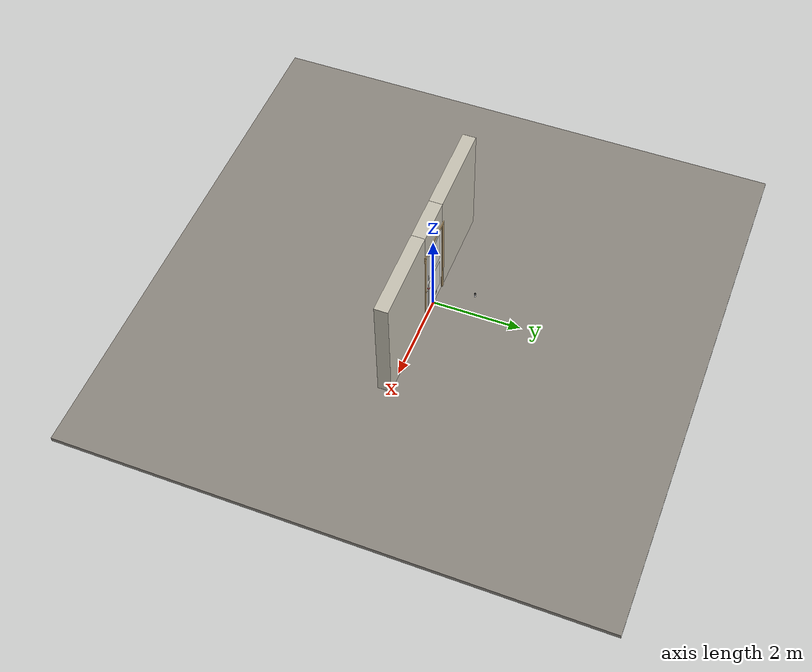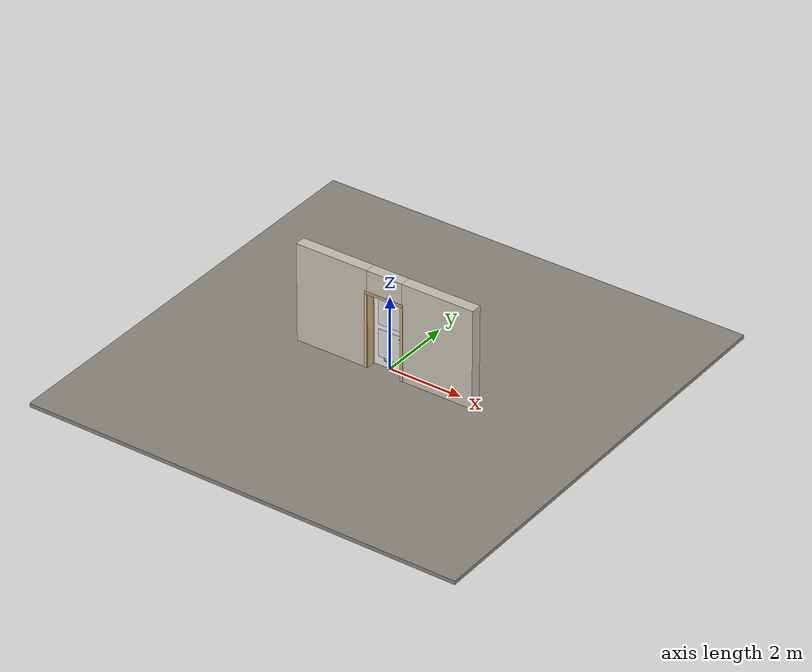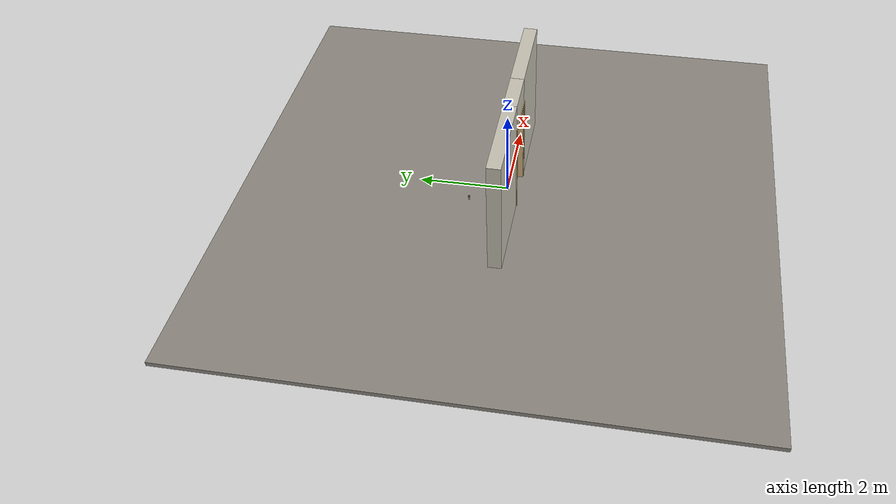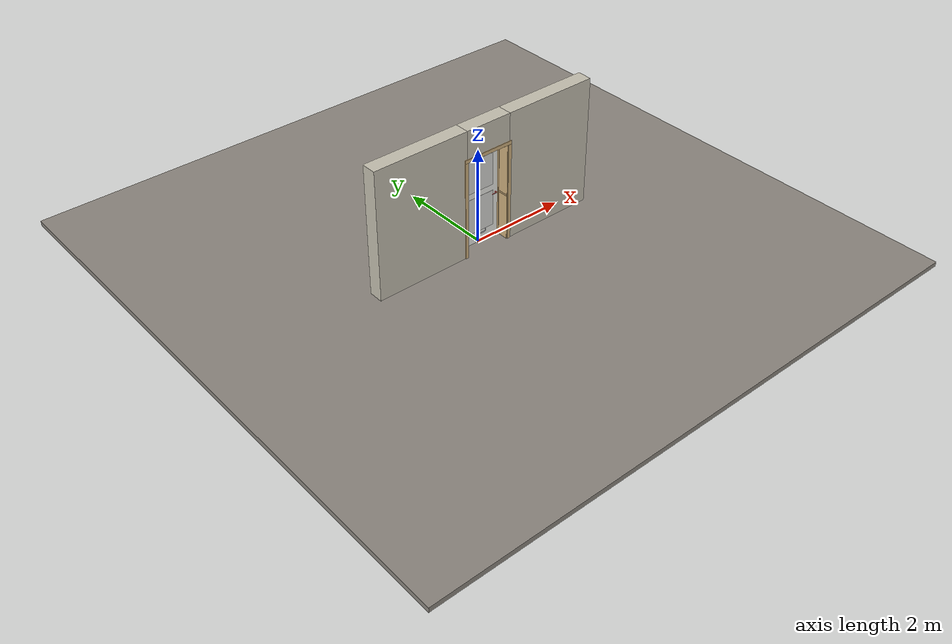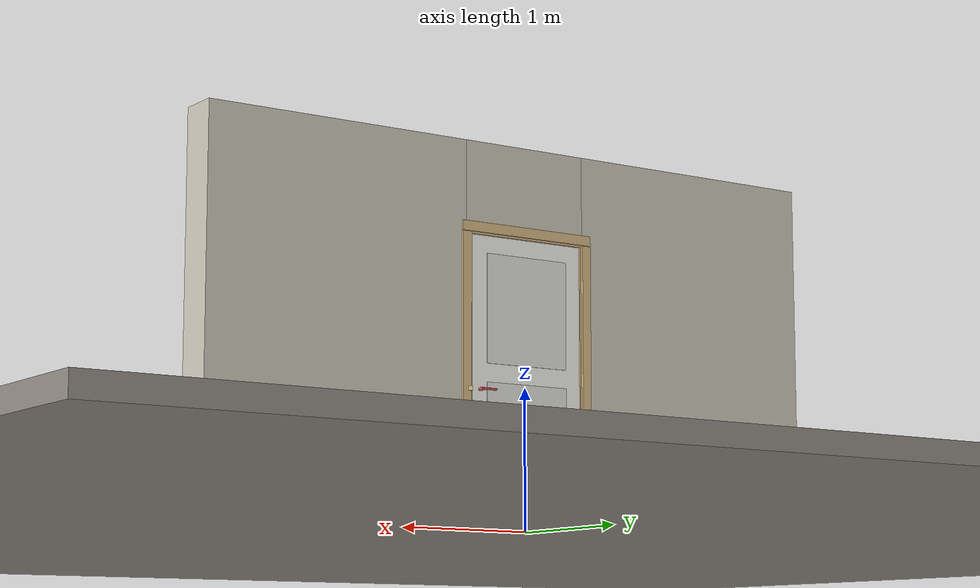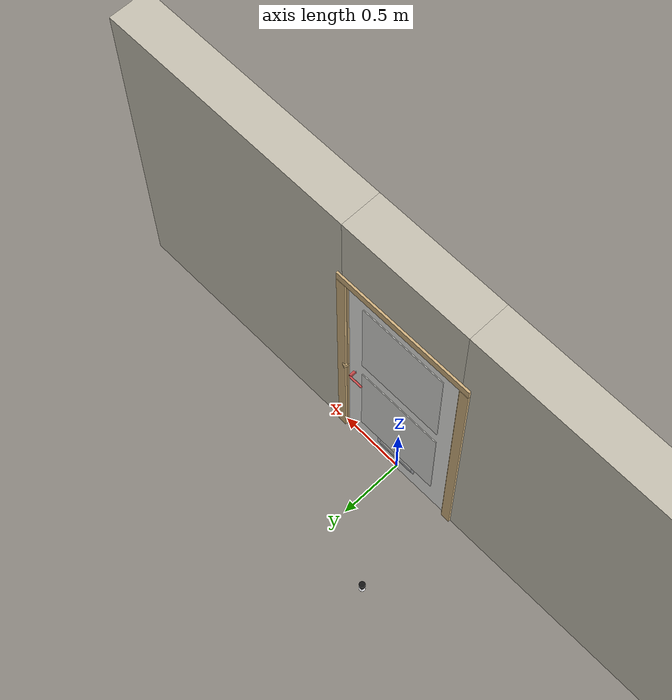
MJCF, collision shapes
<?xml version="1.0" ?>
<mujoco model="db0752_swing_single_full">
  <compiler angle="radian" meshdir="../../hardware" texturedir="../../textures" autolimits="true" inertiafromgeom="false"/>
  <option timestep="0.002" integrator="implicitfast" cone="elliptic" impratio="10" noslip_iterations="3">
    <flag multiccd="enable"/>
  </option>
  <size memory="16M"/>
  <default>
    <geom condim="4" solref="0.005 1" solimp="0.95 0.99 0.001"/>
    <joint solreflimit="0.005 1" solimplimit="0.95 0.99 0.001"/>
    <tendon solreflimit="0.005 1"/>
    <equality solref="0.002 1"/>
  </default>
  <visual>
    <headlight ambient="0.4 0.4 0.4" diffuse="0.7 0.7 0.7" specular="0.2 0.2 0.2"/>
    <quality shadowsize="4096"/>
    <map znear="0.01" zfar="60"/>
  </visual>
  <asset>
    <mesh name="hinge_96510cf394" file="hinge_96510cf394.obj"/>
    <mesh name="hinge_jamb_7fd4ca52b2" file="hinge_jamb_7fd4ca52b2.obj"/>
    <mesh name="lever_748f08efca" file="lever_748f08efca.obj"/>
    <material name="mat_floor" rgba="0.55 0.53 0.5 1" specular="0.2" shininess="0.15" reflectance="0"/>
    <material name="mat_wall" rgba="0.78 0.76 0.7 1" specular="0.2" shininess="0.1" reflectance="0"/>
    <material name="mat_leaf" rgba="0.93 0.93 0.91 1" specular="0.2" shininess="0.34" reflectance="0"/>
    <material name="mat_leaf_panel" rgba="0.856 0.856 0.837 1" specular="0.2" shininess="0.34" reflectance="0"/>
    <material name="mat_hinge" rgba="0.65 0.66 0.68 1" specular="0.74" shininess="0.5" reflectance="0.36"/>
    <material name="mat_op_chrome" rgba="0.9 0.9 0.92 1" specular="0.8" shininess="0.9" reflectance="0.4"/>
    <material name="mat_trim" rgba="0.85 0.66 0.3 1" specular="0.8" shininess="0.75" reflectance="0.4"/>
    <material name="mat_bolt" rgba="0.85 0.66 0.3 1" specular="0.8" shininess="0.75" reflectance="0.4"/>
    <material name="mat_frame" rgba="0.82 0.7 0.5 1" specular="0.2" shininess="0.45" reflectance="0"/>
    <material name="mat_seal" rgba="0.1 0.1 0.1 1" specular="0.2" shininess="0.1" reflectance="0"/>
    <material name="mat_vent" rgba="0.8 0.81 0.83 1" specular="0.8" shininess="0.6" reflectance="0.4"/>
    <material name="mat_bumper_stop" rgba="0.08 0.08 0.08 1" specular="0.2" shininess="0.1" reflectance="0"/>
    <material name="mat_stop_base" rgba="0.9 0.9 0.92 1" specular="0.8" shininess="0.9" reflectance="0.4"/>
    <texture name="skybox" type="skybox" builtin="gradient" rgb1="0.6 0.7 0.85" rgb2="0.9 0.92 0.95" width="256" height="256"/>
  </asset>
  <worldbody>
    <light name="sun" pos="1.5 -2.5 4" dir="-0.3 0.5 -0.8" directional="true" diffuse="0.8 0.8 0.8" specular="0.3 0.3 0.3" castshadow="true"/>
    <light name="fill" pos="-1.5 2.5 3" dir="0.3 -0.5 -0.7" directional="true" diffuse="0.35 0.35 0.4" castshadow="false"/>
    <camera name="robot_view" pos="0 -2.667687 1.734312" xyaxes="1 0 0 0 0.26963 0.962964" fovy="52"/>
    <camera name="far_view" pos="0 2.416687 1.734312" xyaxes="-1 0 0 0 -0.26963 0.962964" fovy="52"/>
    <camera name="iso" pos="1.932062 -2.260938 2.141063" xyaxes="0.741536 0.670913 0 -0.242917 0.268487 0.932151" fovy="46"/>
    <camera name="detail_handle" pos="0.4869 -0.8725 1.245" xyaxes="0.97561 0.219512 0 -0.070934 0.315262 0.94635" fovy="38"/>
    <geom name="floor" type="box" size="6 6 0.05" pos="0 0 -0.05" material="mat_floor" group="0" contype="1" conaffinity="1" friction="0.8 0.005 0.0001" density="2400"/>
    <geom name="wall_left" type="box" size="1.01025 0.15 1.35" pos="-1.48975 -0.1255 1.35" material="mat_wall" group="0" contype="1" conaffinity="1" friction="0.6 0.005 0.0001" density="800"/>
    <geom name="wall_right" type="box" size="0.99525 0.15 1.35" pos="1.50475 -0.1255 1.35" material="mat_wall" group="0" contype="1" conaffinity="1" friction="0.6 0.005 0.0001" density="800"/>
    <geom name="wall_header" type="box" size="0.4945 0.15 0.303" pos="0.015 -0.1255 2.397" material="mat_wall" group="0" contype="1" conaffinity="1" friction="0.6 0.005 0.0001" density="800"/>
    <geom name="hinge_0_jamb" type="mesh" mesh="hinge_jamb_7fd4ca52b2" pos="-0.4575 0.0245 0.259" quat="0 1 0 0" material="mat_hinge" group="1" contype="0" conaffinity="0" density="7850"/>
    <geom name="hinge_1_jamb" type="mesh" mesh="hinge_jamb_7fd4ca52b2" pos="-0.4575 0.0245 1.025" quat="0 1 0 0" material="mat_hinge" group="1" contype="0" conaffinity="0" density="7850"/>
    <geom name="hinge_2_jamb" type="mesh" mesh="hinge_jamb_7fd4ca52b2" pos="-0.4575 0.0245 1.861" quat="0 1 0 0" material="mat_hinge" group="1" contype="0" conaffinity="0" density="7850"/>
    <geom name="jamb_hinge" type="box" size="0.0095 0.15 1.0225" pos="-0.47 -0.1255 1.0225" material="mat_frame" group="0" contype="1" conaffinity="1" friction="0.6 0.005 0.0001" density="400"/>
    <geom name="strike_965_wall_n" type="box" size="0.0245 0.133825 0.0167" pos="0.485 -0.141675 0.965" material="mat_frame" group="0" contype="1" conaffinity="1" friction="0.6 0.005 0.0001" density="400"/>
    <geom name="strike_965_wall_p" type="box" size="0.0245 0.008 0.0167" pos="0.485 0.01585 0.965" material="mat_frame" group="0" contype="1" conaffinity="1" friction="0.6 0.005 0.0001" density="400"/>
    <geom name="strike_965_ramp" type="box" size="0.0245 0.01649 0.0167" pos="0.489636 0.028673 0.965" quat="0.977148 0 0 -0.212558" material="mat_frame" group="0" contype="1" conaffinity="1" friction="0.12 0.005 0.0001" density="400"/>
    <geom name="strike_965_back" type="box" size="0.01615 0.00785 0.0167" pos="0.49335 0 0.965" material="mat_frame" group="0" contype="1" conaffinity="1" friction="0.6 0.005 0.0001" density="400"/>
    <geom name="jamb_strike_0" type="box" size="0.0245 0.15 0.47415" pos="0.485 -0.1255 0.47415" material="mat_frame" group="0" contype="1" conaffinity="1" friction="0.6 0.005 0.0001" density="400"/>
    <geom name="jamb_strike_1" type="box" size="0.0245 0.15 0.53165" pos="0.485 -0.1255 1.51335" material="mat_frame" group="0" contype="1" conaffinity="1" friction="0.6 0.005 0.0001" density="400"/>
    <geom name="jamb_head" type="box" size="0.4945 0.15 0.0095" pos="0.015 -0.1255 2.0545" material="mat_frame" group="0" contype="1" conaffinity="1" friction="0.6 0.005 0.0001" density="400"/>
    <geom name="head_stud" type="box" size="0.4945 0.15 0.015" pos="0.015 -0.1255 2.079" material="mat_wall" group="0" contype="1" conaffinity="1" friction="0.6 0.005 0.0001" density="500"/>
    <geom name="stop_hinge" type="box" size="0.0055 0.016 1.0225" pos="-0.455 -0.034 1.0225" material="mat_frame" group="0" contype="1" conaffinity="1" friction="0.6 0.005 0.0001" density="400"/>
    <geom name="stop_strike" type="box" size="0.0055 0.016 1.0225" pos="0.455 -0.034 1.0225" material="mat_frame" group="0" contype="1" conaffinity="1" friction="0.6 0.005 0.0001" density="400"/>
    <geom name="stop_head" type="box" size="0.4605 0.016 0.0055" pos="0 -0.034 2.0395" material="mat_frame" group="0" contype="1" conaffinity="1" friction="0.6 0.005 0.0001" density="400"/>
    <geom name="seal_hinge" type="box" size="0.004 0.002 1.0225" pos="-0.4575 -0.0195 1.0225" material="mat_seal" group="1" contype="0" conaffinity="0" density="1100"/>
    <geom name="seal_strike" type="box" size="0.004 0.002 1.0225" pos="0.4575 -0.0195 1.0225" material="mat_seal" group="1" contype="0" conaffinity="0" density="1100"/>
    <geom name="seal_head" type="box" size="0.4405 0.002 0.008" pos="0 -0.0195 2.033" material="mat_seal" group="1" contype="0" conaffinity="0" density="1100"/>
    <geom name="casing_l_n" type="box" size="0.035 0.008 1.032" pos="-0.5095 -0.2835 1.0225" material="mat_frame" group="2" contype="0" conaffinity="0" density="400"/>
    <geom name="casing_r_n" type="box" size="0.035 0.008 1.032" pos="0.5095 -0.2835 1.0225" material="mat_frame" group="2" contype="0" conaffinity="0" density="400"/>
    <geom name="casing_h_n" type="box" size="0.5445 0.008 0.035" pos="0 -0.2835 2.094" material="mat_frame" group="2" contype="0" conaffinity="0" density="400"/>
    <geom name="casing_l_p" type="box" size="0.035 0.008 1.032" pos="-0.5095 0.0325 1.0225" material="mat_frame" group="2" contype="0" conaffinity="0" density="400"/>
    <geom name="casing_r_p" type="box" size="0.035 0.008 1.032" pos="0.5095 0.0325 1.0225" material="mat_frame" group="2" contype="0" conaffinity="0" density="400"/>
    <geom name="casing_h_p" type="box" size="0.5445 0.008 0.035" pos="0 0.0325 2.094" material="mat_frame" group="2" contype="0" conaffinity="0" density="400"/>
    <geom name="door_stop_base" type="cylinder" size="0.022 0.003" pos="-0.4735 0.8014 0.003" material="mat_stop_base" group="0" contype="1" conaffinity="1" friction="0.6 0.005 0.0001" density="7850"/>
    <geom name="door_stop_post" type="cylinder" size="0.012 0.0245" pos="-0.4735 0.8014 0.0305" material="mat_stop_base" group="0" contype="1" conaffinity="1" friction="0.6 0.005 0.0001" density="7850"/>
    <geom name="door_stop_bumper" type="cylinder" size="0.022 0.02" pos="-0.4735 0.8014 0.075" material="mat_bumper_stop" group="0" contype="1" conaffinity="1" friction="0.6 0.005 0.0001" density="1100"/>
    <site name="approach_point" pos="0 -1.5 0" quat="1 0 0 0" size="0.05" rgba="0.2 0.9 0.2 0.5" group="4"/>
    <site name="goal_point" pos="0 1.5 0" quat="1 0 0 0" size="0.05" rgba="0.2 0.9 0.2 0.5" group="4"/>
    <site name="door_plane_center" pos="0 0 1.0225" quat="1 0 0 0" size="0.02" rgba="0.2 0.9 0.2 0.5" group="4"/>
    <body name="leaf" pos="-0.4605 0 0">
      <inertial pos="0.456383 0.00012 1.010572" mass="50.203504" quat="0.49994 0.500324 0.499669 -0.500067" diaginertia="3.49974645 17.474918499 20.963926349"/>
      <joint name="leaf_hinge" type="hinge" axis="0 0 1" pos="0.003 0.0245 0" limited="true" range="0 1.570796" solreflimit="0.02 1" damping="0.30611" frictionloss="1.059108" armature="0.02"/>
      <geom name="leaf_slab" type="box" size="0.457 0.0175 1.016" pos="0.46 0 1.025" material="mat_leaf" group="0" contype="1" conaffinity="1" friction="0.4 0.005 0.0001" density="1"/>
      <geom name="leaf_panel_0_n" type="box" size="0.33646 0.003 0.38422" pos="0.46 -0.0205 0.63674" material="mat_leaf_panel" group="1" contype="0" conaffinity="0" density="1"/>
      <geom name="leaf_panel_0_p" type="box" size="0.33646 0.003 0.38422" pos="0.46 0.0205 0.63674" material="mat_leaf_panel" group="1" contype="0" conaffinity="0" density="1"/>
      <geom name="leaf_panel_1_n" type="box" size="0.33646 0.003 0.38422" pos="0.46 -0.0205 1.53518" material="mat_leaf_panel" group="1" contype="0" conaffinity="0" density="1"/>
      <geom name="leaf_panel_1_p" type="box" size="0.33646 0.003 0.38422" pos="0.46 0.0205 1.53518" material="mat_leaf_panel" group="1" contype="0" conaffinity="0" density="1"/>
      <geom name="hinge_0" type="mesh" mesh="hinge_96510cf394" pos="0.003 0.0245 0.259" quat="0 1 0 0" material="mat_hinge" group="1" contype="0" conaffinity="0" density="7850"/>
      <geom name="hinge_1" type="mesh" mesh="hinge_96510cf394" pos="0.003 0.0245 1.025" quat="0 1 0 0" material="mat_hinge" group="1" contype="0" conaffinity="0" density="7850"/>
      <geom name="hinge_2" type="mesh" mesh="hinge_96510cf394" pos="0.003 0.0245 1.861" quat="0 1 0 0" material="mat_hinge" group="1" contype="0" conaffinity="0" density="7850"/>
      <geom name="leaf_latch_bolt_faceplate" type="box" size="0.0006 0.01235 0.0267" pos="0.9164 0 0.965" material="mat_bolt" group="1" contype="0" conaffinity="0" density="8500"/>
      <geom name="louver_vent_stile_n_l" type="box" size="0.012 0.002 0.137" pos="0.298 -0.0195 0.314" material="mat_vent" group="2" contype="0" conaffinity="0" density="2700"/>
      <geom name="louver_vent_stile_n_r" type="box" size="0.012 0.002 0.137" pos="0.622 -0.0195 0.314" material="mat_vent" group="2" contype="0" conaffinity="0" density="2700"/>
      <geom name="louver_vent_rail_n_b" type="box" size="0.15 0.002 0.012" pos="0.46 -0.0195 0.177" material="mat_vent" group="2" contype="0" conaffinity="0" density="2700"/>
      <geom name="louver_vent_rail_n_t" type="box" size="0.15 0.002 0.012" pos="0.46 -0.0195 0.451" material="mat_vent" group="2" contype="0" conaffinity="0" density="2700"/>
      <geom name="louver_vent_stile_p_l" type="box" size="0.012 0.002 0.137" pos="0.298 0.0195 0.314" material="mat_vent" group="2" contype="0" conaffinity="0" density="2700"/>
      <geom name="louver_vent_stile_p_r" type="box" size="0.012 0.002 0.137" pos="0.622 0.0195 0.314" material="mat_vent" group="2" contype="0" conaffinity="0" density="2700"/>
      <geom name="louver_vent_rail_p_b" type="box" size="0.15 0.002 0.012" pos="0.46 0.0195 0.177" material="mat_vent" group="2" contype="0" conaffinity="0" density="2700"/>
      <geom name="louver_vent_rail_p_t" type="box" size="0.15 0.002 0.012" pos="0.46 0.0195 0.451" material="mat_vent" group="2" contype="0" conaffinity="0" density="2700"/>
      <geom name="louver_vent_slat_0" type="box" size="0.15 0.0015 0.015" pos="0.46 0 0.209833" quat="0.965926 -0.258819 0 0" material="mat_vent" group="2" contype="0" conaffinity="0" density="2700"/>
      <geom name="louver_vent_slat_1" type="box" size="0.15 0.0015 0.015" pos="0.46 0 0.2515" quat="0.965926 -0.258819 0 0" material="mat_vent" group="2" contype="0" conaffinity="0" density="2700"/>
      <geom name="louver_vent_slat_2" type="box" size="0.15 0.0015 0.015" pos="0.46 0 0.293167" quat="0.965926 -0.258819 0 0" material="mat_vent" group="2" contype="0" conaffinity="0" density="2700"/>
      <geom name="louver_vent_slat_3" type="box" size="0.15 0.0015 0.015" pos="0.46 0 0.334833" quat="0.965926 -0.258819 0 0" material="mat_vent" group="2" contype="0" conaffinity="0" density="2700"/>
      <geom name="louver_vent_slat_4" type="box" size="0.15 0.0015 0.015" pos="0.46 0 0.3765" quat="0.965926 -0.258819 0 0" material="mat_vent" group="2" contype="0" conaffinity="0" density="2700"/>
      <geom name="louver_vent_slat_5" type="box" size="0.15 0.0015 0.015" pos="0.46 0 0.418167" quat="0.965926 -0.258819 0 0" material="mat_vent" group="2" contype="0" conaffinity="0" density="2700"/>
      <site name="leaf_edge_mid" pos="0.917 0 1.016" quat="1 0 0 0" size="0.02" rgba="0.2 0.9 0.2 0.5" group="4"/>
      <body name="leaf_handle" pos="0.857 0 0.965">
        <inertial pos="-0.024186 -0.000772 0" mass="0.847837" quat="0.710427 0 0 -0.70377" diaginertia="0.001187205 0.002868554 0.003918928"/>
        <joint name="leaf_handle_hinge" type="hinge" axis="0 -1 0" limited="true" range="0 0.87" damping="0.205085" frictionloss="0.04" stiffness="0.9" springref="-0.444444" armature="0.01"/>
        <geom name="leaf_handle_spindle" type="cylinder" size="0.006 0.0255" pos="0 0 0" quat="0.707107 -0.707107 0 0" material="mat_op_chrome" group="1" contype="0" conaffinity="0" density="7850"/>
        <geom name="leaf_handle_lever_n" type="mesh" mesh="lever_748f08efca" pos="0 -0.0175 0" quat="0.707107 0.707107 0 0" material="mat_op_chrome" group="1" contype="0" conaffinity="0" density="3000"/>
        <geom name="leaf_handle_lever_col_n" type="capsule" size="0.008 0.048" pos="-0.056 -0.0725 0" quat="0.707107 0 -0.707107 0" material="mat_op_chrome" group="3" contype="1" conaffinity="1" rgba="0.8 0.3 0.3 0.25" friction="0.7 0.01 0.0001" density="3000"/>
        <geom name="leaf_handle_hub_col_n" type="cylinder" size="0.012 0.022" pos="0 -0.0475 0" quat="0.707107 -0.707107 0 0" material="mat_op_chrome" group="3" contype="1" conaffinity="1" rgba="0.8 0.3 0.3 0.25" friction="0.6 0.005 0.0001" density="3000"/>
        <geom name="leaf_handle_turn_button_n" type="cylinder" size="0.006 0.005" pos="0 -0.0815 0" quat="0.707107 -0.707107 0 0" material="mat_trim" group="1" contype="0" conaffinity="0" density="7100"/>
        <geom name="leaf_handle_lever_p" type="mesh" mesh="lever_748f08efca" pos="0 0.0175 0" quat="-0.707107 0.707107 0 0" material="mat_op_chrome" group="1" contype="0" conaffinity="0" density="3000"/>
        <geom name="leaf_handle_lever_col_p" type="capsule" size="0.008 0.048" pos="-0.056 0.0725 0" quat="0.707107 0 -0.707107 0" material="mat_op_chrome" group="3" contype="1" conaffinity="1" rgba="0.8 0.3 0.3 0.25" friction="0.7 0.01 0.0001" density="3000"/>
        <geom name="leaf_handle_hub_col_p" type="cylinder" size="0.012 0.022" pos="0 0.0475 0" quat="0.707107 -0.707107 0 0" material="mat_op_chrome" group="3" contype="1" conaffinity="1" rgba="0.8 0.3 0.3 0.25" friction="0.6 0.005 0.0001" density="3000"/>
        <site name="leaf_handle_grip_n" pos="-0.0896 -0.0725 0" quat="1 0 0 0" size="0.012" rgba="0.2 0.9 0.2 0.5" group="4"/>
        <site name="leaf_handle_grip_p" pos="-0.0896 0.0725 0" quat="1 0 0 0" size="0.012" rgba="0.2 0.9 0.2 0.5" group="4"/>
      </body>
      <body name="leaf_latch_bolt" pos="0.917 0 0.965">
        <inertial pos="-0.00865 0 0" mass="0.041419" quat="0.92388 -0.382683 0 0" diaginertia="0.000000798 0.000005598 0.000005598"/>
        <joint name="leaf_latch_bolt_slide" type="slide" axis="-1 0 0" limited="true" range="0 0.0127" damping="2" frictionloss="0.3" stiffness="300" springref="-0.008333" armature="0.1"/>
        <geom name="leaf_latch_bolt_capsule" type="capsule" size="0.00635 0.015" pos="-0.00865 0 0" quat="0.707107 0 0.707107 0" material="mat_bolt" group="0" contype="1" conaffinity="1" friction="0.2 0.005 0.0001" density="8500"/>
      </body>
    </body>
  </worldbody>
  <tendon>
    <fixed name="leaf_latch_bolt_coupling" limited="true" range="0 10">
      <joint joint="leaf_latch_bolt_slide" coef="1"/>
      <joint joint="leaf_handle_hinge" coef="-0.016076"/>
    </fixed>
  </tendon>
  <sensor>
    <jointpos name="leaf_hinge_pos" joint="leaf_hinge"/>
    <jointvel name="leaf_hinge_vel" joint="leaf_hinge"/>
    <jointpos name="leaf_handle_hinge_pos" joint="leaf_handle_hinge"/>
    <jointvel name="leaf_handle_hinge_vel" joint="leaf_handle_hinge"/>
    <jointpos name="leaf_latch_bolt_slide_pos" joint="leaf_latch_bolt_slide"/>
    <jointvel name="leaf_latch_bolt_slide_vel" joint="leaf_latch_bolt_slide"/>
  </sensor>
</mujoco>
